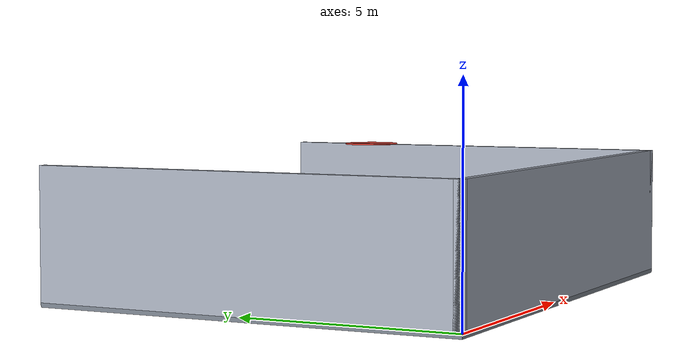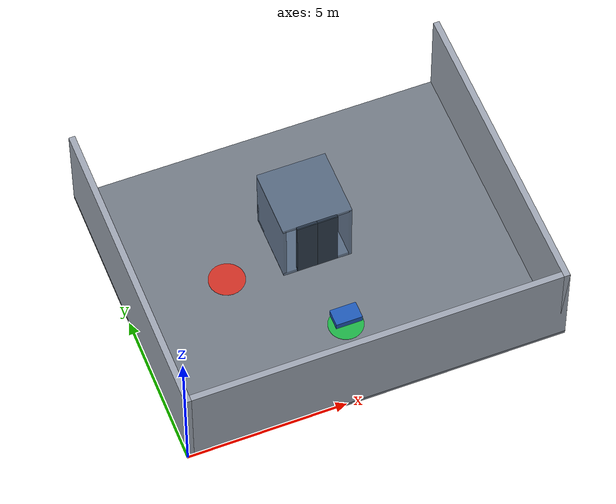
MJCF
<mujoco model="lingtu_lift_building">
  <compiler angle="radian" autolimits="true"/>
  <option gravity="0 0 -9.81" timestep="0.002" integrator="RK4"/>

  <visual>
    <headlight diffuse="0.48 0.48 0.48" ambient="0.20 0.20 0.20" specular="0.03 0.03 0.03"/>
    <rgba haze="0.10 0.13 0.16 1"/>
    <global azimuth="-35" elevation="-22" fovy="52" offwidth="1280" offheight="960"/>
  </visual>

  <asset>
    <material name="floor_mat" rgba="0.45 0.48 0.52 1"/>
    <material name="wall_mat" rgba="0.62 0.65 0.70 1"/>
    <material name="shaft_mat" rgba="0.20 0.24 0.29 0.48"/>
    <material name="cabin_mat" rgba="0.34 0.43 0.54 0.72"/>
    <material name="door_mat" rgba="0.18 0.24 0.30 1"/>
    <material name="start_mat" rgba="0.10 0.78 0.28 0.85"/>
    <material name="goal_mat" rgba="0.92 0.18 0.12 0.85"/>
    <material name="robot_mat" rgba="0.12 0.35 0.72 1"/>
  </asset>

  <worldbody>
    <light name="key" pos="2 -2 11" dir="0.35 0.45 -1" diffuse="0.62 0.60 0.56" castshadow="false"/>
    <light name="upper_fill" pos="9 9 7" dir="-0.3 -0.2 -1" diffuse="0.30 0.33 0.38" castshadow="false"/>

    <!-- Ground floor and simple lobby boundary. -->
    <geom name="floor_1" type="box" pos="6 5 -0.05" size="6 5 0.05"
          material="floor_mat" contype="1" conaffinity="1" condim="3" group="1"/>
    <geom name="wall_1_west" type="box" pos="0.1 5 1.5" size="0.1 5 1.5"
          material="wall_mat" contype="1" conaffinity="1" group="1"/>
    <geom name="wall_1_east" type="box" pos="11.9 5 1.5" size="0.1 5 1.5"
          material="wall_mat" contype="1" conaffinity="1" group="1"/>
    <geom name="wall_1_south" type="box" pos="6 0.1 1.5" size="6 0.1 1.5"
          material="wall_mat" contype="1" conaffinity="1" group="1"/>

    <!-- Upper floor is split around the 2.6 m x 2.6 m shaft opening. -->
    <geom name="floor_2_south" type="box" pos="6 2.35 3.45" size="6 2.35 0.05"
          material="floor_mat" contype="1" conaffinity="1" condim="3" group="4"/>
    <geom name="floor_2_north" type="box" pos="6 8.65 3.45" size="6 1.35 0.05"
          material="floor_mat" contype="1" conaffinity="1" condim="3" group="4"/>
    <geom name="floor_2_west" type="box" pos="2.35 6 3.45" size="2.35 1.3 0.05"
          material="floor_mat" contype="1" conaffinity="1" condim="3" group="4"/>
    <geom name="floor_2_east" type="box" pos="9.65 6 3.45" size="2.35 1.3 0.05"
          material="floor_mat" contype="1" conaffinity="1" condim="3" group="4"/>

    <!-- Shaft guards leave the south entrance open at both landings. -->
    <geom name="shaft_left" type="box" pos="4.65 6.0 3.5" size="0.08 1.35 3.5"
          material="shaft_mat" contype="1" conaffinity="1" group="3"/>
    <geom name="shaft_right" type="box" pos="7.35 6.0 3.5" size="0.08 1.35 3.5"
          material="shaft_mat" contype="1" conaffinity="1" group="3"/>
    <geom name="shaft_rear" type="box" pos="6.0 7.35 3.5" size="1.35 0.08 3.5"
          material="shaft_mat" contype="1" conaffinity="1" group="3"/>

    <!-- Kinematically commanded cabin. Door panels are children of the cabin. -->
    <body name="lift_cabin" pos="6 6 0" gravcomp="1">
      <joint name="lift_cabin_z" type="slide" axis="0 0 1" range="0 3.5" damping="20"/>
      <geom name="lift_cabin_floor" type="box" pos="0 0 0.06" size="1.10 1.10 0.06"
            material="cabin_mat" contype="1" conaffinity="1" condim="3" group="1"/>
      <geom name="lift_cabin_left_wall" type="box" pos="-1.05 0 1.15" size="0.05 1.10 1.15"
            material="cabin_mat" contype="1" conaffinity="1" group="1"/>
      <geom name="lift_cabin_right_wall" type="box" pos="1.05 0 1.15" size="0.05 1.10 1.15"
            material="cabin_mat" contype="1" conaffinity="1" group="1"/>
      <geom name="lift_cabin_rear_wall" type="box" pos="0 1.05 1.15" size="1.10 0.05 1.15"
            material="cabin_mat" contype="1" conaffinity="1" group="1"/>
      <geom name="lift_cabin_roof" type="box" pos="0 0 2.30" size="1.10 1.10 0.05"
            material="cabin_mat" contype="1" conaffinity="1" group="1"/>

      <body name="lift_door_left" pos="-0.325 -1.05 1.10">
        <joint name="lift_door_left_slide" type="slide" axis="1 0 0" range="-0.65 0" damping="8"/>
        <geom name="lift_door_left_panel" type="box" size="0.325 0.05 1.10"
              material="door_mat" contype="1" conaffinity="1" group="1"/>
      </body>
      <body name="lift_door_right" pos="0.325 -1.05 1.10">
        <joint name="lift_door_right_slide" type="slide" axis="1 0 0" range="0 0.65" damping="8"/>
        <geom name="lift_door_right_panel" type="box" size="0.325 0.05 1.10"
              material="door_mat" contype="1" conaffinity="1" group="1"/>
      </body>
    </body>

    <geom name="start_disk" type="cylinder" pos="6 2.6 0.01" size="0.55 0.01"
          material="start_mat" contype="0" conaffinity="0" group="2"/>
    <geom name="goal_disk" type="cylinder" pos="2.5 3.2 3.51" size="0.55 0.01"
          material="goal_mat" contype="0" conaffinity="0" group="2"/>

    <!-- Replaced by the configured ThunderV4 model in MuJoCoEngine.load(). -->
    <body name="robot_placeholder" pos="6 2.6 0.48">
      <freejoint name="robot_root"/>
      <geom name="robot_placeholder_chassis" type="box" size="0.42 0.28 0.10"
            material="robot_mat" mass="22" contype="1" conaffinity="1"/>
    </body>
  </worldbody>
</mujoco>
